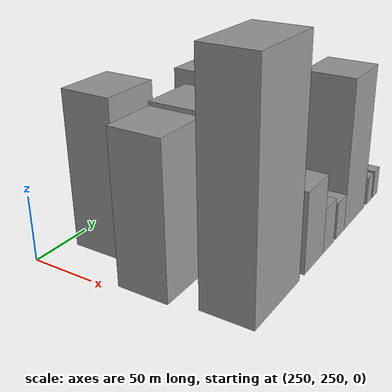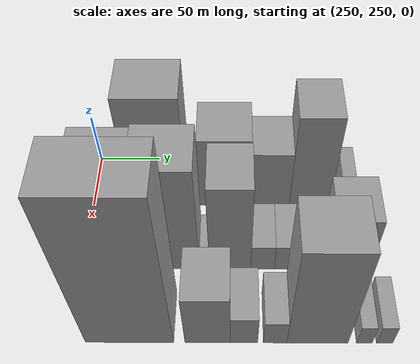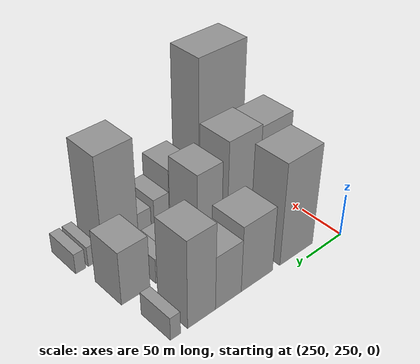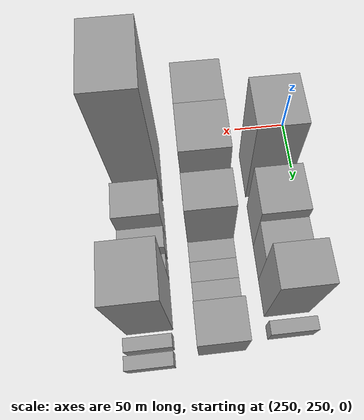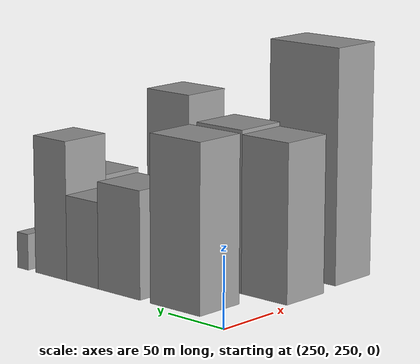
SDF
<sdf version="1.6">
 <world name="default">
  <model name="building_197">
   <static>1</static>
   <pose>280.0000 303.9945 0 0.000000 0.000000 0.000000</pose>
   <link name="link">
    <pose>0 0 60.00 0 0 0</pose>
    <collision name="collision"><geometry><box><size>40.0000 46.2973 120.0000</size></box></geometry></collision>
    <visual name="visual">
     <cast_shadows>0</cast_shadows>
     <geometry><box><size>40.0000 46.2973 120.0000</size></box></geometry>
     <material>
      <script>
       <uri>model://grey_wall/materials/scripts</uri>
       <uri>model://grey_wall/materials/textures</uri>
       <name>vrc/grey_wall</name>
      </script>
     </material>
    </visual>
   </link>
  </model>
  <model name="building_198">
   <static>1</static>
   <pose>280.0000 357.7525 0 0.000000 0.000000 0.000000</pose>
   <link name="link">
    <pose>0 0 39.00 0 0 0</pose>
    <collision name="collision"><geometry><box><size>40.0000 41.2187 78.0000</size></box></geometry></collision>
    <visual name="visual">
     <cast_shadows>0</cast_shadows>
     <geometry><box><size>40.0000 41.2187 78.0000</size></box></geometry>
     <material>
      <script>
       <uri>model://grey_wall/materials/scripts</uri>
       <uri>model://grey_wall/materials/textures</uri>
       <name>vrc/grey_wall</name>
      </script>
     </material>
    </visual>
   </link>
  </model>
  <model name="building_199">
   <static>1</static>
   <pose>280.0000 394.4017 0 0.000000 0.000000 0.000000</pose>
   <link name="link">
    <pose>0 0 31.50 0 0 0</pose>
    <collision name="collision"><geometry><box><size>40.0000 32.0796 63.0000</size></box></geometry></collision>
    <visual name="visual">
     <cast_shadows>0</cast_shadows>
     <geometry><box><size>40.0000 32.0796 63.0000</size></box></geometry>
     <material>
      <script>
       <uri>model://grey_wall/materials/scripts</uri>
       <uri>model://grey_wall/materials/textures</uri>
       <name>vrc/grey_wall</name>
      </script>
     </material>
    </visual>
   </link>
  </model>
  <model name="building_200">
   <static>1</static>
   <pose>280.0000 426.9178 0 0.000000 0.000000 0.000000</pose>
   <link name="link">
    <pose>0 0 51.00 0 0 0</pose>
    <collision name="collision"><geometry><box><size>40.0000 32.9526 102.0000</size></box></geometry></collision>
    <visual name="visual">
     <cast_shadows>0</cast_shadows>
     <geometry><box><size>40.0000 32.9526 102.0000</size></box></geometry>
     <material>
      <script>
       <uri>model://grey_wall/materials/scripts</uri>
       <uri>model://grey_wall/materials/textures</uri>
       <name>vrc/grey_wall</name>
      </script>
     </material>
    </visual>
   </link>
  </model>
  <model name="building_201">
   <static>1</static>
   <pose>280.0000 457.0982 0 0.000000 0.000000 0.000000</pose>
   <link name="link">
    <pose>0 0 13.50 0 0 0</pose>
    <collision name="collision"><geometry><box><size>40.0000 11.4082 27.0000</size></box></geometry></collision>
    <visual name="visual">
     <cast_shadows>0</cast_shadows>
     <geometry><box><size>40.0000 11.4082 27.0000</size></box></geometry>
     <material>
      <script>
       <uri>model://grey_wall/materials/scripts</uri>
       <uri>model://grey_wall/materials/textures</uri>
       <name>vrc/grey_wall</name>
      </script>
     </material>
    </visual>
   </link>
  </model>
  <model name="building_242">
   <static>1</static>
   <pose>340.0000 275.6879 0 0.000000 0.000000 0.000000</pose>
   <link name="link">
    <pose>0 0 57.00 0 0 0</pose>
    <collision name="collision"><geometry><box><size>40.0000 41.7618 114.0000</size></box></geometry></collision>
    <visual name="visual">
     <cast_shadows>0</cast_shadows>
     <geometry><box><size>40.0000 41.7618 114.0000</size></box></geometry>
     <material>
      <script>
       <uri>model://grey_wall/materials/scripts</uri>
       <uri>model://grey_wall/materials/textures</uri>
       <name>vrc/grey_wall</name>
      </script>
     </material>
    </visual>
   </link>
  </model>
  <model name="building_243">
   <static>1</static>
   <pose>340.0000 317.8466 0 0.000000 0.000000 0.000000</pose>
   <link name="link">
    <pose>0 0 58.50 0 0 0</pose>
    <collision name="collision"><geometry><box><size>40.0000 42.5556 117.0000</size></box></geometry></collision>
    <visual name="visual">
     <cast_shadows>0</cast_shadows>
     <geometry><box><size>40.0000 42.5556 117.0000</size></box></geometry>
     <material>
      <script>
       <uri>model://grey_wall/materials/scripts</uri>
       <uri>model://grey_wall/materials/textures</uri>
       <name>vrc/grey_wall</name>
      </script>
     </material>
    </visual>
   </link>
  </model>
  <model name="building_244">
   <static>1</static>
   <pose>340.0000 342.8447 0 0.000000 0.000000 0.000000</pose>
   <link name="link">
    <pose>0 0 7.50 0 0 0</pose>
    <collision name="collision"><geometry><box><size>40.0000 7.4406 15.0000</size></box></geometry></collision>
    <visual name="visual">
     <cast_shadows>0</cast_shadows>
     <geometry><box><size>40.0000 7.4406 15.0000</size></box></geometry>
     <material>
      <script>
       <uri>model://grey_wall/materials/scripts</uri>
       <uri>model://grey_wall/materials/textures</uri>
       <name>vrc/grey_wall</name>
      </script>
     </material>
    </visual>
   </link>
  </model>
  <model name="building_245">
   <static>1</static>
   <pose>340.0000 362.3451 0 0.000000 0.000000 0.000000</pose>
   <link name="link">
    <pose>0 0 49.50 0 0 0</pose>
    <collision name="collision"><geometry><box><size>40.0000 31.5602 99.0000</size></box></geometry></collision>
    <visual name="visual">
     <cast_shadows>0</cast_shadows>
     <geometry><box><size>40.0000 31.5602 99.0000</size></box></geometry>
     <material>
      <script>
       <uri>model://grey_wall/materials/scripts</uri>
       <uri>model://grey_wall/materials/textures</uri>
       <name>vrc/grey_wall</name>
      </script>
     </material>
    </visual>
   </link>
  </model>
  <model name="building_246">
   <static>1</static>
   <pose>340.0000 387.0429 0 0.000000 0.000000 0.000000</pose>
   <link name="link">
    <pose>0 0 15.00 0 0 0</pose>
    <collision name="collision"><geometry><box><size>40.0000 17.8353 30.0000</size></box></geometry></collision>
    <visual name="visual">
     <cast_shadows>0</cast_shadows>
     <geometry><box><size>40.0000 17.8353 30.0000</size></box></geometry>
     <material>
      <script>
       <uri>model://grey_wall/materials/scripts</uri>
       <uri>model://grey_wall/materials/textures</uri>
       <name>vrc/grey_wall</name>
      </script>
     </material>
    </visual>
   </link>
  </model>
  <model name="building_247">
   <static>1</static>
   <pose>340.0000 404.7442 0 0.000000 0.000000 0.000000</pose>
   <link name="link">
    <pose>0 0 15.00 0 0 0</pose>
    <collision name="collision"><geometry><box><size>40.0000 17.5674 30.0000</size></box></geometry></collision>
    <visual name="visual">
     <cast_shadows>0</cast_shadows>
     <geometry><box><size>40.0000 17.5674 30.0000</size></box></geometry>
     <material>
      <script>
       <uri>model://grey_wall/materials/scripts</uri>
       <uri>model://grey_wall/materials/textures</uri>
       <name>vrc/grey_wall</name>
      </script>
     </material>
    </visual>
   </link>
  </model>
  <model name="building_248">
   <static>1</static>
   <pose>340.0000 421.4688 0 0.000000 0.000000 0.000000</pose>
   <link name="link">
    <pose>0 0 15.00 0 0 0</pose>
    <collision name="collision"><geometry><box><size>40.0000 15.8818 30.0000</size></box></geometry></collision>
    <visual name="visual">
     <cast_shadows>0</cast_shadows>
     <geometry><box><size>40.0000 15.8818 30.0000</size></box></geometry>
     <material>
      <script>
       <uri>model://grey_wall/materials/scripts</uri>
       <uri>model://grey_wall/materials/textures</uri>
       <name>vrc/grey_wall</name>
      </script>
     </material>
    </visual>
   </link>
  </model>
  <model name="building_249">
   <static>1</static>
   <pose>340.0000 452.8849 0 0.000000 0.000000 0.000000</pose>
   <link name="link">
    <pose>0 0 31.50 0 0 0</pose>
    <collision name="collision"><geometry><box><size>40.0000 32.9504 63.0000</size></box></geometry></collision>
    <visual name="visual">
     <cast_shadows>0</cast_shadows>
     <geometry><box><size>40.0000 32.9504 63.0000</size></box></geometry>
     <material>
      <script>
       <uri>model://grey_wall/materials/scripts</uri>
       <uri>model://grey_wall/materials/textures</uri>
       <name>vrc/grey_wall</name>
      </script>
     </material>
    </visual>
   </link>
  </model>
  <model name="building_299">
   <static>1</static>
   <pose>400.0000 291.5992 0 0.000000 0.000000 0.000000</pose>
   <link name="link">
    <pose>0 0 85.50 0 0 0</pose>
    <collision name="collision"><geometry><box><size>40.0000 62.2761 171.0000</size></box></geometry></collision>
    <visual name="visual">
     <cast_shadows>0</cast_shadows>
     <geometry><box><size>40.0000 62.2761 171.0000</size></box></geometry>
     <material>
      <script>
       <uri>model://grey_wall/materials/scripts</uri>
       <uri>model://grey_wall/materials/textures</uri>
       <name>vrc/grey_wall</name>
      </script>
     </material>
    </visual>
   </link>
  </model>
  <model name="building_300">
   <static>1</static>
   <pose>400.0000 346.6698 0 0.000000 0.000000 0.000000</pose>
   <link name="link">
    <pose>0 0 31.50 0 0 0</pose>
    <collision name="collision"><geometry><box><size>40.0000 31.8651 63.0000</size></box></geometry></collision>
    <visual name="visual">
     <cast_shadows>0</cast_shadows>
     <geometry><box><size>40.0000 31.8651 63.0000</size></box></geometry>
     <material>
      <script>
       <uri>model://grey_wall/materials/scripts</uri>
       <uri>model://grey_wall/materials/textures</uri>
       <name>vrc/grey_wall</name>
      </script>
     </material>
    </visual>
   </link>
  </model>
  <model name="building_301">
   <static>1</static>
   <pose>400.0000 372.3253 0 0.000000 0.000000 0.000000</pose>
   <link name="link">
    <pose>0 0 18.00 0 0 0</pose>
    <collision name="collision"><geometry><box><size>40.0000 19.4460 36.0000</size></box></geometry></collision>
    <visual name="visual">
     <cast_shadows>0</cast_shadows>
     <geometry><box><size>40.0000 19.4460 36.0000</size></box></geometry>
     <material>
      <script>
       <uri>model://grey_wall/materials/scripts</uri>
       <uri>model://grey_wall/materials/textures</uri>
       <name>vrc/grey_wall</name>
      </script>
     </material>
    </visual>
   </link>
  </model>
  <model name="building_302">
   <static>1</static>
   <pose>400.0000 394.3167 0 0.000000 0.000000 0.000000</pose>
   <link name="link">
    <pose>0 0 15.00 0 0 0</pose>
    <collision name="collision"><geometry><box><size>40.0000 16.5368 30.0000</size></box></geometry></collision>
    <visual name="visual">
     <cast_shadows>0</cast_shadows>
     <geometry><box><size>40.0000 16.5368 30.0000</size></box></geometry>
     <material>
      <script>
       <uri>model://grey_wall/materials/scripts</uri>
       <uri>model://grey_wall/materials/textures</uri>
       <name>vrc/grey_wall</name>
      </script>
     </material>
    </visual>
   </link>
  </model>
  <model name="building_303">
   <static>1</static>
   <pose>400.0000 424.1968 0 0.000000 0.000000 0.000000</pose>
   <link name="link">
    <pose>0 0 60.00 0 0 0</pose>
    <collision name="collision"><geometry><box><size>40.0000 43.2234 120.0000</size></box></geometry></collision>
    <visual name="visual">
     <cast_shadows>0</cast_shadows>
     <geometry><box><size>40.0000 43.2234 120.0000</size></box></geometry>
     <material>
      <script>
       <uri>model://grey_wall/materials/scripts</uri>
       <uri>model://grey_wall/materials/textures</uri>
       <name>vrc/grey_wall</name>
      </script>
     </material>
    </visual>
   </link>
  </model>
  <model name="building_304">
   <static>1</static>
   <pose>400.0000 457.3450 0 0.000000 0.000000 0.000000</pose>
   <link name="link">
    <pose>0 0 12.00 0 0 0</pose>
    <collision name="collision"><geometry><box><size>40.0000 11.0732 24.0000</size></box></geometry></collision>
    <visual name="visual">
     <cast_shadows>0</cast_shadows>
     <geometry><box><size>40.0000 11.0732 24.0000</size></box></geometry>
     <material>
      <script>
       <uri>model://grey_wall/materials/scripts</uri>
       <uri>model://grey_wall/materials/textures</uri>
       <name>vrc/grey_wall</name>
      </script>
     </material>
    </visual>
   </link>
  </model>
  <model name="building_305">
   <static>1</static>
   <pose>400.0000 471.5796 0 0.000000 0.000000 0.000000</pose>
   <link name="link">
    <pose>0 0 12.00 0 0 0</pose>
    <collision name="collision"><geometry><box><size>40.0000 11.3961 24.0000</size></box></geometry></collision>
    <visual name="visual">
     <cast_shadows>0</cast_shadows>
     <geometry><box><size>40.0000 11.3961 24.0000</size></box></geometry>
     <material>
      <script>
       <uri>model://grey_wall/materials/scripts</uri>
       <uri>model://grey_wall/materials/textures</uri>
       <name>vrc/grey_wall</name>
      </script>
     </material>
    </visual>
   </link>
  </model>
 </world>
</sdf>
